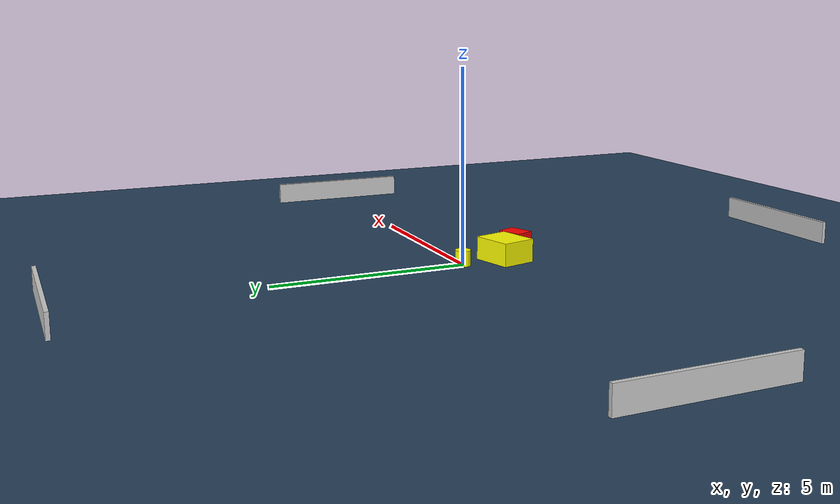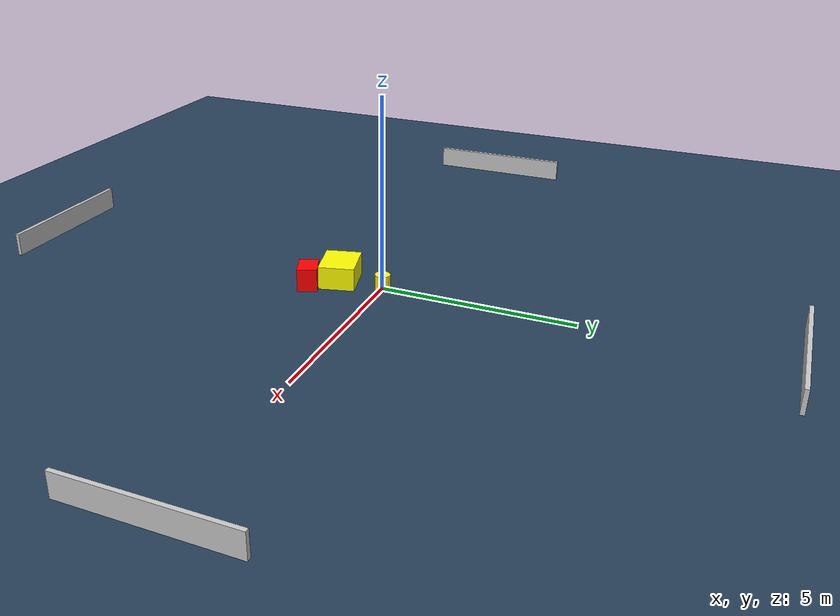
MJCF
<?xml version="1.0" ?>
<mujoco model="generated_environment">
  <option timestep="0.01" integrator="RK4" cone="elliptic"/>
  <default>
    <geom density="1"/>
  </default>
  <asset>
    <texture builtin="gradient" height="3072" name="skybox" rgb1="0.3 0.5 0.7" rgb2="0 0 0" type="skybox" width="512"/>
    <texture builtin="checker" height="300" name="groundplane" rgb1="0.2 0.3 0.4" rgb2="0.1 0.2 0.3" type="2d" width="300"/>
    <material name="groundplane" reflectance="0.2" texrepeat="5 5" texture="groundplane"/>
  </asset>
  <worldbody>
    <light dir="0 0 -1" directional="true" pos="0 0 1.5"/>
    <geom condim="3" friction="0.5 0.005 0.001" material="groundplane" name="floor" pos="0 0 0" size="0 0 0.05" type="plane"/>
    <body name="walls">
      <geom name="wall_1" condim="4" pos="-10.0 0.0 0.3" rgba="0.800000011920929 0.800000011920929 0.800000011920929 1.0" size="0.05 2.0 0.3" type="box"/>
      <geom name="wall_2" condim="4" pos="10.0 0.0 0.3" rgba="0.800000011920929 0.800000011920929 0.800000011920929 1.0" size="0.05 2.0 0.3" type="box"/>
      <geom name="wall_3" condim="4" pos="0.0 -10.0 0.3" rgba="0.800000011920929 0.800000011920929 0.800000011920929 1.0" size="2.0 0.05 0.3" type="box"/>
      <geom name="wall_4" condim="4" pos="0.0 10.0 0.3" rgba="0.800000011920929 0.800000011920929 0.800000011920929 1.0" size="2.0 0.05 0.3" type="box"/>
    </body>
    <body name="robot">
      <joint name="joint_x" type="slide" pos="0 0 0" axis="1 0 0"/>
      <joint name="joint_y" type="slide" pos="0 0 0" axis="0 1 0"/>
      <geom name="robot" type="cylinder" pos="0.0 0.0 0.2" size="0.2 0.2 0.0" mass="5.0" friction="1.0 0.005 0.0001" condim="4" rgba="1.0 1.0 0.0 1.0"/>
    </body>
    <body name="obstacle_1_movable">
      <geom name="obstacle_1_movable" condim="4" pos="0.004441510689549947 -1.18803367495964 0.3" euler="0 0 194.2314337715698" friction="0.0 0.005 0.001" rgba="1.0 1.0 0.0 1.0" size="0.5593366830297715 0.4645768338429497 0.3" type="box" mass="0.1"/>
      <joint type="free"/>
    </body>
    <body name="obstacle_2_static">
      <geom name="obstacle_2_static" condim="4" pos="0.6043065388279153 -1.8053584645509 0.3" euler="0 0 111.31555194752727" friction="0.0 0.005 0.001" rgba="1.0 0.0 0.0 1.0" size="0.256136644210991 0.3379471325447029 0.3" type="box"/>
    </body>
  </worldbody>
  <actuator>
    <motor name="actuator_x" joint="joint_x" gear="1" ctrlrange="-1 1"/>
    <motor name="actuator_y" joint="joint_y" gear="1" ctrlrange="-1 1"/>
  </actuator>
</mujoco>
